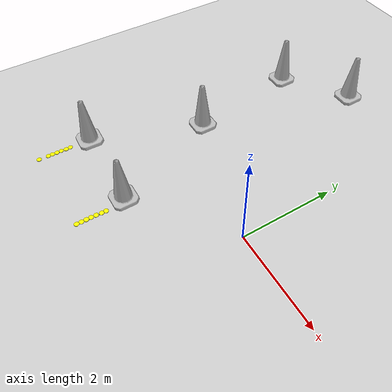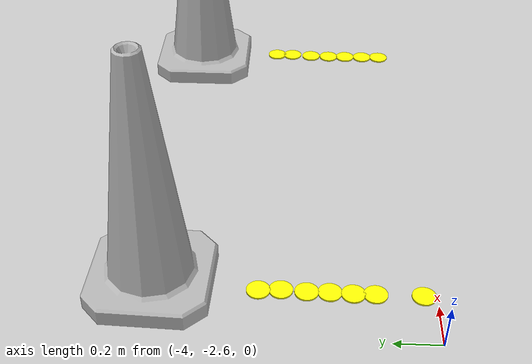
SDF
<sdf version="1.6">
 <world name="default">
  <model name="ground_plane">
   <static>1</static>
   <link name="link">
    <collision name="collision">
     <geometry><plane><normal>0 0 1</normal><size>100 100</size></plane></geometry>
     <surface><friction><ode><mu>100</mu><mu2>50</mu2></ode></friction></surface>
    </collision>
    <visual name="visual">
     <cast_shadows>0</cast_shadows>
     <geometry><plane><normal>0 0 1</normal><size>100 100</size></plane></geometry>
     <material>
      <script><uri>file://media/materials/scripts/gazebo.material</uri><name>Gazebo/Grey</name></script>
     </material>
    </visual>
   </link>
  </model>
  <model name="red_model_6">
   <link name="link">
    <collision name="collision">
     <geometry>
      <mesh><scale>10 10 10</scale><uri>model://construction_cone_red/meshes/construction_cone.dae</uri></mesh>
     </geometry>
    </collision>
    <visual name="visual">
     <geometry>
      <mesh><scale>10 10 10</scale><uri>model://construction_cone_red/meshes/construction_cone.dae</uri></mesh>
     </geometry>
    </visual>
    <inertial>
     <inertia><ixx>1</ixx><ixy>0</ixy><ixz>0</ixz><iyy>1</iyy><iyz>0</iyz><izz>1</izz></inertia>
     <mass>1</mass>
    </inertial>
   </link>
   <pose>-1.91999 -1.4699 0.005 0 -0 0.00011</pose>
  </model>
  <model name="red_model_7">
   <link name="link">
    <collision name="collision">
     <geometry>
      <mesh><scale>10 10 10</scale><uri>model://construction_cone_red/meshes/construction_cone.dae</uri></mesh>
     </geometry>
    </collision>
    <visual name="visual">
     <geometry>
      <mesh><scale>10 10 10</scale><uri>model://construction_cone_red/meshes/construction_cone.dae</uri></mesh>
     </geometry>
    </visual>
    <inertial>
     <inertia><ixx>1</ixx><ixy>0</ixy><ixz>0</ixz><iyy>1</iyy><iyz>0</iyz><izz>1</izz></inertia>
     <mass>1</mass>
    </inertial>
   </link>
   <pose>-3.71945 -1.43765 0.004995 0 0 -0.034435</pose>
  </model>
  <model name="red_model_18">
   <link name="link">
    <collision name="collision">
     <geometry>
      <mesh><scale>10 10 10</scale><uri>model://construction_cone_red/meshes/construction_cone.dae</uri></mesh>
     </geometry>
    </collision>
    <visual name="visual">
     <geometry>
      <mesh><scale>10 10 10</scale><uri>model://construction_cone_red/meshes/construction_cone.dae</uri></mesh>
     </geometry>
    </visual>
    <inertial>
     <inertia><ixx>1</ixx><ixy>0</ixy><ixz>0</ixz><iyy>1</iyy><iyz>0</iyz><izz>1</izz></inertia>
     <mass>1</mass>
    </inertial>
   </link>
   <pose>-2.88 0.87 -0 0 -1e-06 0</pose>
  </model>
  <model name="blue_model_21">
   <link name="link">
    <collision name="collision">
     <geometry>
      <mesh><scale>10 10 10</scale><uri>model://construction_cone_blue/meshes/construction_cone.dae</uri></mesh>
     </geometry>
    </collision>
    <visual name="visual">
     <geometry>
      <mesh><scale>10 10 10</scale><uri>model://construction_cone_blue/meshes/construction_cone.dae</uri></mesh>
     </geometry>
    </visual>
    <inertial>
     <inertia><ixx>1</ixx><ixy>0</ixy><ixz>0</ixz><iyy>1</iyy><iyz>0</iyz><izz>1</izz></inertia>
     <mass>1</mass>
    </inertial>
   </link>
   <pose>-3.24 3.3 -0 0 -1e-06 0</pose>
  </model>
  <model name="blue_model_26">
   <link name="link">
    <collision name="collision">
     <geometry>
      <mesh><scale>10 10 10</scale><uri>model://construction_cone_blue/meshes/construction_cone.dae</uri></mesh>
     </geometry>
    </collision>
    <visual name="visual">
     <geometry>
      <mesh><scale>10 10 10</scale><uri>model://construction_cone_blue/meshes/construction_cone.dae</uri></mesh>
     </geometry>
    </visual>
    <inertial>
     <inertia><ixx>1</ixx><ixy>0</ixy><ixz>0</ixz><iyy>1</iyy><iyz>0</iyz><izz>1</izz></inertia>
     <mass>1</mass>
    </inertial>
   </link>
   <pose>-1.92 4.23 -0 0 -0 0</pose>
  </model>
  <model name="yellow_disc_clone_8">
   <static>1</static>
   <link name="link">
    <visual name="visual">
     <geometry><cylinder><radius>0.05</radius><length>0.01</length></cylinder></geometry>
     <material><ambient>1 1 0 1</ambient><diffuse>1 1 0 1</diffuse><specular>0.5 0.5 0.5 1</specular></material>
    </visual>
    <collision name="collision">
     <geometry><cylinder><radius>0.5</radius><length>0.01</length></cylinder></geometry>
    </collision>
   </link>
   <pose>-3.74551 -2.54637 0 0 -0 0</pose>
  </model>
  <model name="yellow_disc_clone_10">
   <static>1</static>
   <link name="link">
    <visual name="visual">
     <geometry><cylinder><radius>0.05</radius><length>0.01</length></cylinder></geometry>
     <material><ambient>1 1 0 1</ambient><diffuse>1 1 0 1</diffuse><specular>0.5 0.5 0.5 1</specular></material>
    </visual>
    <collision name="collision">
     <geometry><cylinder><radius>0.5</radius><length>0.01</length></cylinder></geometry>
    </collision>
   </link>
   <pose>-3.7452 -2.35161 0 0 -0 0</pose>
  </model>
  <model name="yellow_disc_clone_11">
   <static>1</static>
   <link name="link">
    <visual name="visual">
     <geometry><cylinder><radius>0.05</radius><length>0.01</length></cylinder></geometry>
     <material><ambient>1 1 0 1</ambient><diffuse>1 1 0 1</diffuse><specular>0.5 0.5 0.5 1</specular></material>
    </visual>
    <collision name="collision">
     <geometry><cylinder><radius>0.5</radius><length>0.01</length></cylinder></geometry>
    </collision>
   </link>
   <pose>-3.74616 -2.26137 0 0 -0 0</pose>
  </model>
  <model name="yellow_disc_clone_12">
   <static>1</static>
   <link name="link">
    <visual name="visual">
     <geometry><cylinder><radius>0.05</radius><length>0.01</length></cylinder></geometry>
     <material><ambient>1 1 0 1</ambient><diffuse>1 1 0 1</diffuse><specular>0.5 0.5 0.5 1</specular></material>
    </visual>
    <collision name="collision">
     <geometry><cylinder><radius>0.5</radius><length>0.01</length></cylinder></geometry>
    </collision>
   </link>
   <pose>-3.74241 -2.16633 0 0 -0 0</pose>
  </model>
  <model name="yellow_disc_clone_13">
   <static>1</static>
   <link name="link">
    <visual name="visual">
     <geometry><cylinder><radius>0.05</radius><length>0.01</length></cylinder></geometry>
     <material><ambient>1 1 0 1</ambient><diffuse>1 1 0 1</diffuse><specular>0.5 0.5 0.5 1</specular></material>
    </visual>
    <collision name="collision">
     <geometry><cylinder><radius>0.5</radius><length>0.01</length></cylinder></geometry>
    </collision>
   </link>
   <pose>-3.74342 -2.07134 0 0 -0 0</pose>
  </model>
  <model name="yellow_disc_clone_14">
   <static>1</static>
   <link name="link">
    <visual name="visual">
     <geometry><cylinder><radius>0.05</radius><length>0.01</length></cylinder></geometry>
     <material><ambient>1 1 0 1</ambient><diffuse>1 1 0 1</diffuse><specular>0.5 0.5 0.5 1</specular></material>
    </visual>
    <collision name="collision">
     <geometry><cylinder><radius>0.5</radius><length>0.01</length></cylinder></geometry>
    </collision>
   </link>
   <pose>-3.73739 -1.96678 0 0 -0 0</pose>
  </model>
  <model name="yellow_disc_clone_15">
   <static>1</static>
   <link name="link">
    <visual name="visual">
     <geometry><cylinder><radius>0.05</radius><length>0.01</length></cylinder></geometry>
     <material><ambient>1 1 0 1</ambient><diffuse>1 1 0 1</diffuse><specular>0.5 0.5 0.5 1</specular></material>
    </visual>
    <collision name="collision">
     <geometry><cylinder><radius>0.5</radius><length>0.01</length></cylinder></geometry>
    </collision>
   </link>
   <pose>-3.74313 -1.87421 0 0 -0 0</pose>
  </model>
  <model name="yellow_disc_clone_28">
   <static>1</static>
   <link name="link">
    <visual name="visual">
     <geometry><cylinder><radius>0.05</radius><length>0.01</length></cylinder></geometry>
     <material><ambient>1 1 0 1</ambient><diffuse>1 1 0 1</diffuse><specular>0.5 0.5 0.5 1</specular></material>
    </visual>
    <collision name="collision">
     <geometry><cylinder><radius>0.5</radius><length>0.01</length></cylinder></geometry>
    </collision>
   </link>
   <pose>-1.83428 -2.46684 0 0 -0 0</pose>
  </model>
  <model name="yellow_disc_clone_29">
   <static>1</static>
   <link name="link">
    <visual name="visual">
     <geometry><cylinder><radius>0.05</radius><length>0.01</length></cylinder></geometry>
     <material><ambient>1 1 0 1</ambient><diffuse>1 1 0 1</diffuse><specular>0.5 0.5 0.5 1</specular></material>
    </visual>
    <collision name="collision">
     <geometry><cylinder><radius>0.5</radius><length>0.01</length></cylinder></geometry>
    </collision>
   </link>
   <pose>-1.83529 -2.37177 0 0 -0 0</pose>
  </model>
  <model name="yellow_disc_clone_30">
   <static>1</static>
   <link name="link">
    <visual name="visual">
     <geometry><cylinder><radius>0.05</radius><length>0.01</length></cylinder></geometry>
     <material><ambient>1 1 0 1</ambient><diffuse>1 1 0 1</diffuse><specular>0.5 0.5 0.5 1</specular></material>
    </visual>
    <collision name="collision">
     <geometry><cylinder><radius>0.5</radius><length>0.01</length></cylinder></geometry>
    </collision>
   </link>
   <pose>-1.83633 -2.27363 0 0 -0 0</pose>
  </model>
  <model name="yellow_disc_clone_31">
   <static>1</static>
   <link name="link">
    <visual name="visual">
     <geometry><cylinder><radius>0.05</radius><length>0.01</length></cylinder></geometry>
     <material><ambient>1 1 0 1</ambient><diffuse>1 1 0 1</diffuse><specular>0.5 0.5 0.5 1</specular></material>
    </visual>
    <collision name="collision">
     <geometry><cylinder><radius>0.5</radius><length>0.01</length></cylinder></geometry>
    </collision>
   </link>
   <pose>-1.83734 -2.17855 0 0 -0 0</pose>
  </model>
  <model name="yellow_disc_clone_32">
   <static>1</static>
   <link name="link">
    <visual name="visual">
     <geometry><cylinder><radius>0.05</radius><length>0.01</length></cylinder></geometry>
     <material><ambient>1 1 0 1</ambient><diffuse>1 1 0 1</diffuse><specular>0.5 0.5 0.5 1</specular></material>
    </visual>
    <collision name="collision">
     <geometry><cylinder><radius>0.5</radius><length>0.01</length></cylinder></geometry>
    </collision>
   </link>
   <pose>-1.83534 -2.07731 0 0 -0 0</pose>
  </model>
  <model name="yellow_disc_clone_33">
   <static>1</static>
   <link name="link">
    <visual name="visual">
     <geometry><cylinder><radius>0.05</radius><length>0.01</length></cylinder></geometry>
     <material><ambient>1 1 0 1</ambient><diffuse>1 1 0 1</diffuse><specular>0.5 0.5 0.5 1</specular></material>
    </visual>
    <collision name="collision">
     <geometry><cylinder><radius>0.5</radius><length>0.01</length></cylinder></geometry>
    </collision>
   </link>
   <pose>-1.82727 -1.96987 0 0 -0 0</pose>
  </model>
  <model name="yellow_disc_clone_34">
   <static>1</static>
   <link name="link">
    <visual name="visual">
     <geometry><cylinder><radius>0.05</radius><length>0.01</length></cylinder></geometry>
     <material><ambient>1 1 0 1</ambient><diffuse>1 1 0 1</diffuse><specular>0.5 0.5 0.5 1</specular></material>
    </visual>
    <collision name="collision">
     <geometry><cylinder><radius>0.5</radius><length>0.01</length></cylinder></geometry>
    </collision>
   </link>
   <pose>-1.82821 -1.88093 0 0 -0 0</pose>
  </model>
 </world>
</sdf>
